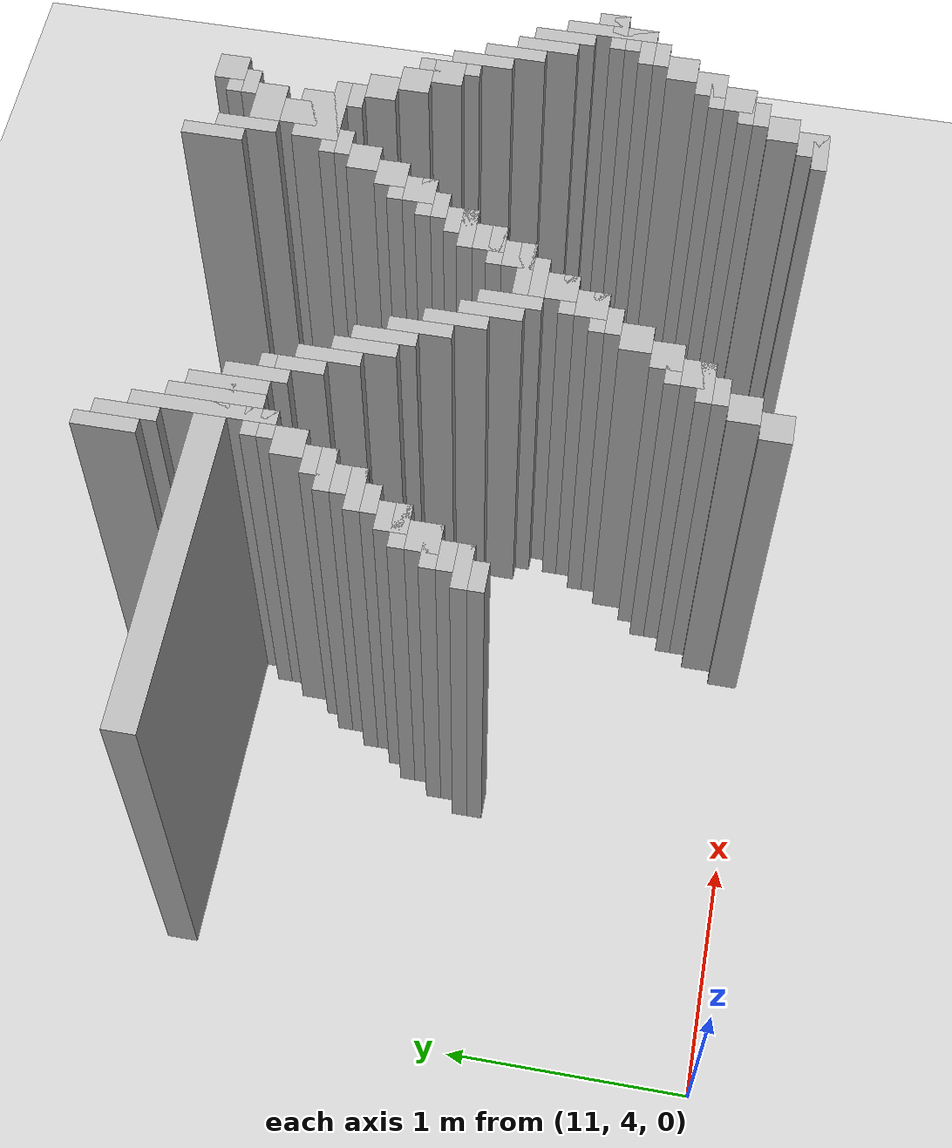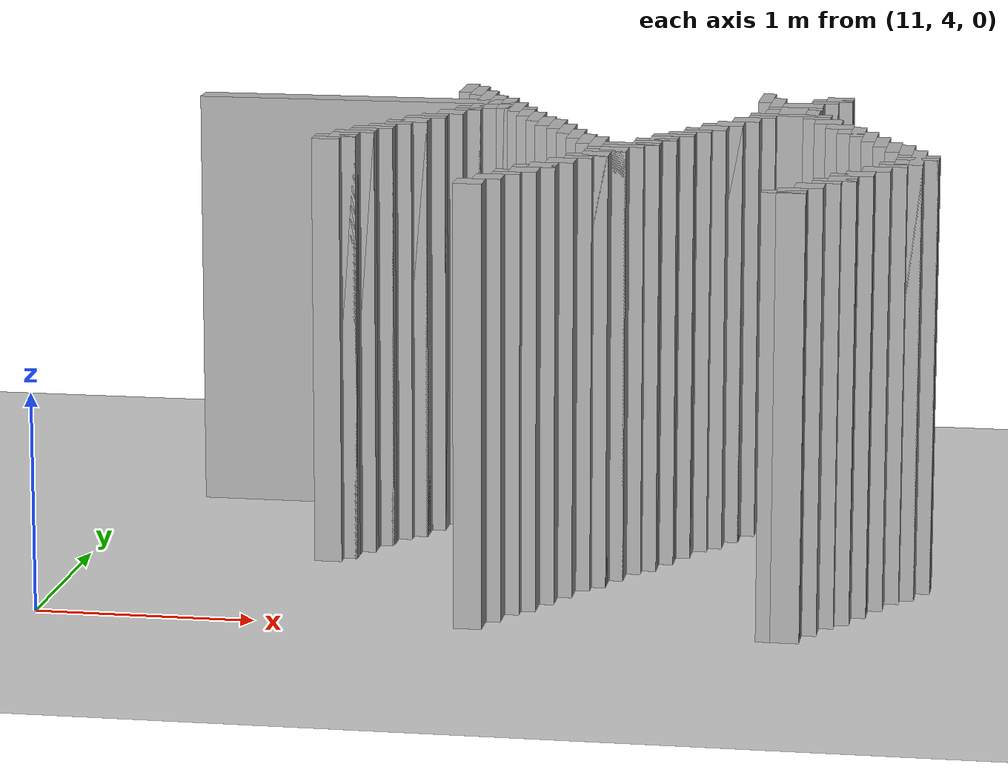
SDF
<sdf version="1.6">
 <world name="slam_world">
  <model name="ground_plane">
   <static>true</static>
   <link name="link">
    <collision name="collision">
     <geometry><plane><normal>0 0 1</normal><size>100 100</size></plane></geometry>
    </collision>
    <visual name="visual">
     <geometry><plane><normal>0 0 1</normal><size>100 100</size></plane></geometry>
     <material>
      <ambient>0.8 0.8 0.8 1</ambient>
      <diffuse>0.8 0.8 0.8 1</diffuse>
      <specular>0.8 0.8 0.8 1</specular>
     </material>
    </visual>
   </link>
  </model>
  <model name="wall_1692">
   <static>true</static>
   <pose>12.542553191489361 6.574468085106383 1.0 0 0 0</pose>
   <link name="link">
    <collision name="collision">
     <geometry><box><size>0.06382978723404255 0.2553191489361702 2.0</size></box></geometry>
    </collision>
    <visual name="visual">
     <geometry><box><size>0.06382978723404255 0.2553191489361702 2.0</size></box></geometry>
     <material><ambient>0.5 0.5 0.5 1</ambient><diffuse>0.7 0.7 0.7 1</diffuse></material>
    </visual>
   </link>
  </model>
  <model name="wall_1700">
   <static>true</static>
   <pose>12.606382978723403 6.51063829787234 1.0 0 0 0</pose>
   <link name="link">
    <collision name="collision">
     <geometry><box><size>0.06382978723404255 0.2553191489361702 2.0</size></box></geometry>
    </collision>
    <visual name="visual">
     <geometry><box><size>0.06382978723404255 0.2553191489361702 2.0</size></box></geometry>
     <material><ambient>0.5 0.5 0.5 1</ambient><diffuse>0.7 0.7 0.7 1</diffuse></material>
    </visual>
   </link>
  </model>
  <model name="wall_1701">
   <static>true</static>
   <pose>14.010638297872338 6.51063829787234 1.0 0 0 0</pose>
   <link name="link">
    <collision name="collision">
     <geometry><box><size>0.06382978723404255 0.2553191489361702 2.0</size></box></geometry>
    </collision>
    <visual name="visual">
     <geometry><box><size>0.06382978723404255 0.2553191489361702 2.0</size></box></geometry>
     <material><ambient>0.5 0.5 0.5 1</ambient><diffuse>0.7 0.7 0.7 1</diffuse></material>
    </visual>
   </link>
  </model>
  <model name="wall_1706">
   <static>true</static>
   <pose>14.361702127659573 6.51063829787234 1.0 0 0 0</pose>
   <link name="link">
    <collision name="collision">
     <geometry><box><size>0.1276595744680851 0.1276595744680851 2.0</size></box></geometry>
    </collision>
    <visual name="visual">
     <geometry><box><size>0.1276595744680851 0.1276595744680851 2.0</size></box></geometry>
     <material><ambient>0.5 0.5 0.5 1</ambient><diffuse>0.7 0.7 0.7 1</diffuse></material>
    </visual>
   </link>
  </model>
  <model name="wall_1712">
   <static>true</static>
   <pose>12.670212765957446 6.223404255319148 1.0 0 0 0</pose>
   <link name="link">
    <collision name="collision">
     <geometry><box><size>0.06382978723404255 0.5744680851063829 2.0</size></box></geometry>
    </collision>
    <visual name="visual">
     <geometry><box><size>0.06382978723404255 0.5744680851063829 2.0</size></box></geometry>
     <material><ambient>0.5 0.5 0.5 1</ambient><diffuse>0.7 0.7 0.7 1</diffuse></material>
    </visual>
   </link>
  </model>
  <model name="wall_1713">
   <static>true</static>
   <pose>14.074468085106382 6.382978723404255 1.0 0 0 0</pose>
   <link name="link">
    <collision name="collision">
     <geometry><box><size>0.06382978723404255 0.2553191489361702 2.0</size></box></geometry>
    </collision>
    <visual name="visual">
     <geometry><box><size>0.06382978723404255 0.2553191489361702 2.0</size></box></geometry>
     <material><ambient>0.5 0.5 0.5 1</ambient><diffuse>0.7 0.7 0.7 1</diffuse></material>
    </visual>
   </link>
  </model>
  <model name="wall_1714">
   <static>true</static>
   <pose>14.329787234042552 6.478723404255319 1.0 0 0 0</pose>
   <link name="link">
    <collision name="collision">
     <geometry><box><size>0.19148936170212766 0.06382978723404255 2.0</size></box></geometry>
    </collision>
    <visual name="visual">
     <geometry><box><size>0.19148936170212766 0.06382978723404255 2.0</size></box></geometry>
     <material><ambient>0.5 0.5 0.5 1</ambient><diffuse>0.7 0.7 0.7 1</diffuse></material>
    </visual>
   </link>
  </model>
  <model name="wall_1718">
   <static>true</static>
   <pose>14.297872340425531 6.414893617021276 1.0 0 0 0</pose>
   <link name="link">
    <collision name="collision">
     <geometry><box><size>0.1276595744680851 0.06382978723404255 2.0</size></box></geometry>
    </collision>
    <visual name="visual">
     <geometry><box><size>0.1276595744680851 0.06382978723404255 2.0</size></box></geometry>
     <material><ambient>0.5 0.5 0.5 1</ambient><diffuse>0.7 0.7 0.7 1</diffuse></material>
    </visual>
   </link>
  </model>
  <model name="wall_1723">
   <static>true</static>
   <pose>12.734042553191488 6.191489361702128 1.0 0 0 0</pose>
   <link name="link">
    <collision name="collision">
     <geometry><box><size>0.06382978723404255 0.3829787234042553 2.0</size></box></geometry>
    </collision>
    <visual name="visual">
     <geometry><box><size>0.06382978723404255 0.3829787234042553 2.0</size></box></geometry>
     <material><ambient>0.5 0.5 0.5 1</ambient><diffuse>0.7 0.7 0.7 1</diffuse></material>
    </visual>
   </link>
  </model>
  <model name="wall_1724">
   <static>true</static>
   <pose>14.202127659574467 6.319148936170213 1.0 0 0 0</pose>
   <link name="link">
    <collision name="collision">
     <geometry><box><size>0.19148936170212766 0.1276595744680851 2.0</size></box></geometry>
    </collision>
    <visual name="visual">
     <geometry><box><size>0.19148936170212766 0.1276595744680851 2.0</size></box></geometry>
     <material><ambient>0.5 0.5 0.5 1</ambient><diffuse>0.7 0.7 0.7 1</diffuse></material>
    </visual>
   </link>
  </model>
  <model name="wall_1726">
   <static>true</static>
   <pose>12.797872340425531 6.159574468085106 1.0 0 0 0</pose>
   <link name="link">
    <collision name="collision">
     <geometry><box><size>0.06382978723404255 0.3191489361702127 2.0</size></box></geometry>
    </collision>
    <visual name="visual">
     <geometry><box><size>0.06382978723404255 0.3191489361702127 2.0</size></box></geometry>
     <material><ambient>0.5 0.5 0.5 1</ambient><diffuse>0.7 0.7 0.7 1</diffuse></material>
    </visual>
   </link>
  </model>
  <model name="wall_1731">
   <static>true</static>
   <pose>12.063829787234042 6.191489361702128 1.0 0 0 0</pose>
   <link name="link">
    <collision name="collision">
     <geometry><box><size>1.5319148936170213 0.1276595744680851 2.0</size></box></geometry>
    </collision>
    <visual name="visual">
     <geometry><box><size>1.5319148936170213 0.1276595744680851 2.0</size></box></geometry>
     <material><ambient>0.5 0.5 0.5 1</ambient><diffuse>0.7 0.7 0.7 1</diffuse></material>
    </visual>
   </link>
  </model>
  <model name="wall_1732">
   <static>true</static>
   <pose>14.170212765957446 6.127659574468085 1.0 0 0 0</pose>
   <link name="link">
    <collision name="collision">
     <geometry><box><size>0.1276595744680851 0.2553191489361702 2.0</size></box></geometry>
    </collision>
    <visual name="visual">
     <geometry><box><size>0.1276595744680851 0.2553191489361702 2.0</size></box></geometry>
     <material><ambient>0.5 0.5 0.5 1</ambient><diffuse>0.7 0.7 0.7 1</diffuse></material>
    </visual>
   </link>
  </model>
  <model name="wall_1736">
   <static>true</static>
   <pose>12.861702127659573 6.063829787234042 1.0 0 0 0</pose>
   <link name="link">
    <collision name="collision">
     <geometry><box><size>0.06382978723404255 0.2553191489361702 2.0</size></box></geometry>
    </collision>
    <visual name="visual">
     <geometry><box><size>0.06382978723404255 0.2553191489361702 2.0</size></box></geometry>
     <material><ambient>0.5 0.5 0.5 1</ambient><diffuse>0.7 0.7 0.7 1</diffuse></material>
    </visual>
   </link>
  </model>
  <model name="wall_1737">
   <static>true</static>
   <pose>14.170212765957446 6.095744680851063 1.0 0 0 0</pose>
   <link name="link">
    <collision name="collision">
     <geometry><box><size>0.2553191489361702 0.19148936170212766 2.0</size></box></geometry>
    </collision>
    <visual name="visual">
     <geometry><box><size>0.2553191489361702 0.19148936170212766 2.0</size></box></geometry>
     <material><ambient>0.5 0.5 0.5 1</ambient><diffuse>0.7 0.7 0.7 1</diffuse></material>
    </visual>
   </link>
  </model>
  <model name="wall_1747">
   <static>true</static>
   <pose>12.76595744680851 6.031914893617021 1.0 0 0 0</pose>
   <link name="link">
    <collision name="collision">
     <geometry><box><size>0.3829787234042553 0.06382978723404255 2.0</size></box></geometry>
    </collision>
    <visual name="visual">
     <geometry><box><size>0.3829787234042553 0.06382978723404255 2.0</size></box></geometry>
     <material><ambient>0.5 0.5 0.5 1</ambient><diffuse>0.7 0.7 0.7 1</diffuse></material>
    </visual>
   </link>
  </model>
  <model name="wall_1748">
   <static>true</static>
   <pose>14.170212765957446 6.031914893617021 1.0 0 0 0</pose>
   <link name="link">
    <collision name="collision">
     <geometry><box><size>0.3829787234042553 0.06382978723404255 2.0</size></box></geometry>
    </collision>
    <visual name="visual">
     <geometry><box><size>0.3829787234042553 0.06382978723404255 2.0</size></box></geometry>
     <material><ambient>0.5 0.5 0.5 1</ambient><diffuse>0.7 0.7 0.7 1</diffuse></material>
    </visual>
   </link>
  </model>
  <model name="wall_1754">
   <static>true</static>
   <pose>12.638297872340425 5.968085106382978 1.0 0 0 0</pose>
   <link name="link">
    <collision name="collision">
     <geometry><box><size>0.1276595744680851 0.06382978723404255 2.0</size></box></geometry>
    </collision>
    <visual name="visual">
     <geometry><box><size>0.1276595744680851 0.06382978723404255 2.0</size></box></geometry>
     <material><ambient>0.5 0.5 0.5 1</ambient><diffuse>0.7 0.7 0.7 1</diffuse></material>
    </visual>
   </link>
  </model>
  <model name="wall_1755">
   <static>true</static>
   <pose>12.925531914893616 5.904255319148936 1.0 0 0 0</pose>
   <link name="link">
    <collision name="collision">
     <geometry><box><size>0.06382978723404255 0.19148936170212766 2.0</size></box></geometry>
    </collision>
    <visual name="visual">
     <geometry><box><size>0.06382978723404255 0.19148936170212766 2.0</size></box></geometry>
     <material><ambient>0.5 0.5 0.5 1</ambient><diffuse>0.7 0.7 0.7 1</diffuse></material>
    </visual>
   </link>
  </model>
  <model name="wall_1756">
   <static>true</static>
   <pose>14.042553191489361 5.968085106382978 1.0 0 0 0</pose>
   <link name="link">
    <collision name="collision">
     <geometry><box><size>0.1276595744680851 0.06382978723404255 2.0</size></box></geometry>
    </collision>
    <visual name="visual">
     <geometry><box><size>0.1276595744680851 0.06382978723404255 2.0</size></box></geometry>
     <material><ambient>0.5 0.5 0.5 1</ambient><diffuse>0.7 0.7 0.7 1</diffuse></material>
    </visual>
   </link>
  </model>
  <model name="wall_1757">
   <static>true</static>
   <pose>14.297872340425531 5.968085106382978 1.0 0 0 0</pose>
   <link name="link">
    <collision name="collision">
     <geometry><box><size>0.1276595744680851 0.06382978723404255 2.0</size></box></geometry>
    </collision>
    <visual name="visual">
     <geometry><box><size>0.1276595744680851 0.06382978723404255 2.0</size></box></geometry>
     <material><ambient>0.5 0.5 0.5 1</ambient><diffuse>0.7 0.7 0.7 1</diffuse></material>
    </visual>
   </link>
  </model>
  <model name="wall_1763">
   <static>true</static>
   <pose>12.574468085106382 5.872340425531914 1.0 0 0 0</pose>
   <link name="link">
    <collision name="collision">
     <geometry><box><size>0.1276595744680851 0.1276595744680851 2.0</size></box></geometry>
    </collision>
    <visual name="visual">
     <geometry><box><size>0.1276595744680851 0.1276595744680851 2.0</size></box></geometry>
     <material><ambient>0.5 0.5 0.5 1</ambient><diffuse>0.7 0.7 0.7 1</diffuse></material>
    </visual>
   </link>
  </model>
  <model name="wall_1764">
   <static>true</static>
   <pose>12.989361702127658 5.8085106382978715 1.0 0 0 0</pose>
   <link name="link">
    <collision name="collision">
     <geometry><box><size>0.06382978723404255 0.2553191489361702 2.0</size></box></geometry>
    </collision>
    <visual name="visual">
     <geometry><box><size>0.06382978723404255 0.2553191489361702 2.0</size></box></geometry>
     <material><ambient>0.5 0.5 0.5 1</ambient><diffuse>0.7 0.7 0.7 1</diffuse></material>
    </visual>
   </link>
  </model>
  <model name="wall_1765">
   <static>true</static>
   <pose>13.978723404255318 5.872340425531914 1.0 0 0 0</pose>
   <link name="link">
    <collision name="collision">
     <geometry><box><size>0.1276595744680851 0.1276595744680851 2.0</size></box></geometry>
    </collision>
    <visual name="visual">
     <geometry><box><size>0.1276595744680851 0.1276595744680851 2.0</size></box></geometry>
     <material><ambient>0.5 0.5 0.5 1</ambient><diffuse>0.7 0.7 0.7 1</diffuse></material>
    </visual>
   </link>
  </model>
  <model name="wall_1766">
   <static>true</static>
   <pose>14.361702127659573 5.872340425531914 1.0 0 0 0</pose>
   <link name="link">
    <collision name="collision">
     <geometry><box><size>0.1276595744680851 0.1276595744680851 2.0</size></box></geometry>
    </collision>
    <visual name="visual">
     <geometry><box><size>0.1276595744680851 0.1276595744680851 2.0</size></box></geometry>
     <material><ambient>0.5 0.5 0.5 1</ambient><diffuse>0.7 0.7 0.7 1</diffuse></material>
    </visual>
   </link>
  </model>
  <model name="wall_1772">
   <static>true</static>
   <pose>12.51063829787234 5.744680851063829 1.0 0 0 0</pose>
   <link name="link">
    <collision name="collision">
     <geometry><box><size>0.1276595744680851 0.1276595744680851 2.0</size></box></geometry>
    </collision>
    <visual name="visual">
     <geometry><box><size>0.1276595744680851 0.1276595744680851 2.0</size></box></geometry>
     <material><ambient>0.5 0.5 0.5 1</ambient><diffuse>0.7 0.7 0.7 1</diffuse></material>
    </visual>
   </link>
  </model>
  <model name="wall_1773">
   <static>true</static>
   <pose>13.053191489361701 5.680851063829786 1.0 0 0 0</pose>
   <link name="link">
    <collision name="collision">
     <geometry><box><size>0.06382978723404255 0.2553191489361702 2.0</size></box></geometry>
    </collision>
    <visual name="visual">
     <geometry><box><size>0.06382978723404255 0.2553191489361702 2.0</size></box></geometry>
     <material><ambient>0.5 0.5 0.5 1</ambient><diffuse>0.7 0.7 0.7 1</diffuse></material>
    </visual>
   </link>
  </model>
  <model name="wall_1774">
   <static>true</static>
   <pose>13.914893617021276 5.744680851063829 1.0 0 0 0</pose>
   <link name="link">
    <collision name="collision">
     <geometry><box><size>0.1276595744680851 0.1276595744680851 2.0</size></box></geometry>
    </collision>
    <visual name="visual">
     <geometry><box><size>0.1276595744680851 0.1276595744680851 2.0</size></box></geometry>
     <material><ambient>0.5 0.5 0.5 1</ambient><diffuse>0.7 0.7 0.7 1</diffuse></material>
    </visual>
   </link>
  </model>
  <model name="wall_1775">
   <static>true</static>
   <pose>14.425531914893616 5.744680851063829 1.0 0 0 0</pose>
   <link name="link">
    <collision name="collision">
     <geometry><box><size>0.1276595744680851 0.1276595744680851 2.0</size></box></geometry>
    </collision>
    <visual name="visual">
     <geometry><box><size>0.1276595744680851 0.1276595744680851 2.0</size></box></geometry>
     <material><ambient>0.5 0.5 0.5 1</ambient><diffuse>0.7 0.7 0.7 1</diffuse></material>
    </visual>
   </link>
  </model>
  <model name="wall_1781">
   <static>true</static>
   <pose>12.478723404255318 5.712765957446808 1.0 0 0 0</pose>
   <link name="link">
    <collision name="collision">
     <geometry><box><size>0.19148936170212766 0.06382978723404255 2.0</size></box></geometry>
    </collision>
    <visual name="visual">
     <geometry><box><size>0.19148936170212766 0.06382978723404255 2.0</size></box></geometry>
     <material><ambient>0.5 0.5 0.5 1</ambient><diffuse>0.7 0.7 0.7 1</diffuse></material>
    </visual>
   </link>
  </model>
  <model name="wall_1782">
   <static>true</static>
   <pose>13.117021276595743 5.617021276595744 1.0 0 0 0</pose>
   <link name="link">
    <collision name="collision">
     <geometry><box><size>0.06382978723404255 0.2553191489361702 2.0</size></box></geometry>
    </collision>
    <visual name="visual">
     <geometry><box><size>0.06382978723404255 0.2553191489361702 2.0</size></box></geometry>
     <material><ambient>0.5 0.5 0.5 1</ambient><diffuse>0.7 0.7 0.7 1</diffuse></material>
    </visual>
   </link>
  </model>
  <model name="wall_1783">
   <static>true</static>
   <pose>13.882978723404253 5.712765957446808 1.0 0 0 0</pose>
   <link name="link">
    <collision name="collision">
     <geometry><box><size>0.19148936170212766 0.06382978723404255 2.0</size></box></geometry>
    </collision>
    <visual name="visual">
     <geometry><box><size>0.19148936170212766 0.06382978723404255 2.0</size></box></geometry>
     <material><ambient>0.5 0.5 0.5 1</ambient><diffuse>0.7 0.7 0.7 1</diffuse></material>
    </visual>
   </link>
  </model>
  <model name="wall_1784">
   <static>true</static>
   <pose>14.52127659574468 5.617021276595744 1.0 0 0 0</pose>
   <link name="link">
    <collision name="collision">
     <geometry><box><size>0.06382978723404255 0.2553191489361702 2.0</size></box></geometry>
    </collision>
    <visual name="visual">
     <geometry><box><size>0.06382978723404255 0.2553191489361702 2.0</size></box></geometry>
     <material><ambient>0.5 0.5 0.5 1</ambient><diffuse>0.7 0.7 0.7 1</diffuse></material>
    </visual>
   </link>
  </model>
  <model name="wall_1788">
   <static>true</static>
   <pose>12.446808510638297 5.617021276595744 1.0 0 0 0</pose>
   <link name="link">
    <collision name="collision">
     <geometry><box><size>0.1276595744680851 0.1276595744680851 2.0</size></box></geometry>
    </collision>
    <visual name="visual">
     <geometry><box><size>0.1276595744680851 0.1276595744680851 2.0</size></box></geometry>
     <material><ambient>0.5 0.5 0.5 1</ambient><diffuse>0.7 0.7 0.7 1</diffuse></material>
    </visual>
   </link>
  </model>
  <model name="wall_1789">
   <static>true</static>
   <pose>13.851063829787233 5.617021276595744 1.0 0 0 0</pose>
   <link name="link">
    <collision name="collision">
     <geometry><box><size>0.1276595744680851 0.1276595744680851 2.0</size></box></geometry>
    </collision>
    <visual name="visual">
     <geometry><box><size>0.1276595744680851 0.1276595744680851 2.0</size></box></geometry>
     <material><ambient>0.5 0.5 0.5 1</ambient><diffuse>0.7 0.7 0.7 1</diffuse></material>
    </visual>
   </link>
  </model>
  <model name="wall_1790">
   <static>true</static>
   <pose>14.489361702127658 5.617021276595744 1.0 0 0 0</pose>
   <link name="link">
    <collision name="collision">
     <geometry><box><size>0.1276595744680851 0.1276595744680851 2.0</size></box></geometry>
    </collision>
    <visual name="visual">
     <geometry><box><size>0.1276595744680851 0.1276595744680851 2.0</size></box></geometry>
     <material><ambient>0.5 0.5 0.5 1</ambient><diffuse>0.7 0.7 0.7 1</diffuse></material>
    </visual>
   </link>
  </model>
  <model name="wall_1796">
   <static>true</static>
   <pose>12.414893617021276 5.585106382978723 1.0 0 0 0</pose>
   <link name="link">
    <collision name="collision">
     <geometry><box><size>0.19148936170212766 0.06382978723404255 2.0</size></box></geometry>
    </collision>
    <visual name="visual">
     <geometry><box><size>0.19148936170212766 0.06382978723404255 2.0</size></box></geometry>
     <material><ambient>0.5 0.5 0.5 1</ambient><diffuse>0.7 0.7 0.7 1</diffuse></material>
    </visual>
   </link>
  </model>
  <model name="wall_1797">
   <static>true</static>
   <pose>13.180851063829786 5.489361702127659 1.0 0 0 0</pose>
   <link name="link">
    <collision name="collision">
     <geometry><box><size>0.06382978723404255 0.2553191489361702 2.0</size></box></geometry>
    </collision>
    <visual name="visual">
     <geometry><box><size>0.06382978723404255 0.2553191489361702 2.0</size></box></geometry>
     <material><ambient>0.5 0.5 0.5 1</ambient><diffuse>0.7 0.7 0.7 1</diffuse></material>
    </visual>
   </link>
  </model>
  <model name="wall_1798">
   <static>true</static>
   <pose>13.819148936170212 5.585106382978723 1.0 0 0 0</pose>
   <link name="link">
    <collision name="collision">
     <geometry><box><size>0.19148936170212766 0.06382978723404255 2.0</size></box></geometry>
    </collision>
    <visual name="visual">
     <geometry><box><size>0.19148936170212766 0.06382978723404255 2.0</size></box></geometry>
     <material><ambient>0.5 0.5 0.5 1</ambient><diffuse>0.7 0.7 0.7 1</diffuse></material>
    </visual>
   </link>
  </model>
  <model name="wall_1799">
   <static>true</static>
   <pose>14.585106382978722 5.489361702127659 1.0 0 0 0</pose>
   <link name="link">
    <collision name="collision">
     <geometry><box><size>0.06382978723404255 0.2553191489361702 2.0</size></box></geometry>
    </collision>
    <visual name="visual">
     <geometry><box><size>0.06382978723404255 0.2553191489361702 2.0</size></box></geometry>
     <material><ambient>0.5 0.5 0.5 1</ambient><diffuse>0.7 0.7 0.7 1</diffuse></material>
    </visual>
   </link>
  </model>
  <model name="wall_1803">
   <static>true</static>
   <pose>12.382978723404255 5.5212765957446805 1.0 0 0 0</pose>
   <link name="link">
    <collision name="collision">
     <geometry><box><size>0.1276595744680851 0.06382978723404255 2.0</size></box></geometry>
    </collision>
    <visual name="visual">
     <geometry><box><size>0.1276595744680851 0.06382978723404255 2.0</size></box></geometry>
     <material><ambient>0.5 0.5 0.5 1</ambient><diffuse>0.7 0.7 0.7 1</diffuse></material>
    </visual>
   </link>
  </model>
  <model name="wall_1804">
   <static>true</static>
   <pose>13.787234042553191 5.5212765957446805 1.0 0 0 0</pose>
   <link name="link">
    <collision name="collision">
     <geometry><box><size>0.1276595744680851 0.06382978723404255 2.0</size></box></geometry>
    </collision>
    <visual name="visual">
     <geometry><box><size>0.1276595744680851 0.06382978723404255 2.0</size></box></geometry>
     <material><ambient>0.5 0.5 0.5 1</ambient><diffuse>0.7 0.7 0.7 1</diffuse></material>
    </visual>
   </link>
  </model>
  <model name="wall_1810">
   <static>true</static>
   <pose>12.319148936170212 5.425531914893616 1.0 0 0 0</pose>
   <link name="link">
    <collision name="collision">
     <geometry><box><size>0.1276595744680851 0.1276595744680851 2.0</size></box></geometry>
    </collision>
    <visual name="visual">
     <geometry><box><size>0.1276595744680851 0.1276595744680851 2.0</size></box></geometry>
     <material><ambient>0.5 0.5 0.5 1</ambient><diffuse>0.7 0.7 0.7 1</diffuse></material>
    </visual>
   </link>
  </model>
  <model name="wall_1811">
   <static>true</static>
   <pose>13.244680851063828 5.361702127659574 1.0 0 0 0</pose>
   <link name="link">
    <collision name="collision">
     <geometry><box><size>0.06382978723404255 0.2553191489361702 2.0</size></box></geometry>
    </collision>
    <visual name="visual">
     <geometry><box><size>0.06382978723404255 0.2553191489361702 2.0</size></box></geometry>
     <material><ambient>0.5 0.5 0.5 1</ambient><diffuse>0.7 0.7 0.7 1</diffuse></material>
    </visual>
   </link>
  </model>
  <model name="wall_1812">
   <static>true</static>
   <pose>13.723404255319148 5.425531914893616 1.0 0 0 0</pose>
   <link name="link">
    <collision name="collision">
     <geometry><box><size>0.1276595744680851 0.1276595744680851 2.0</size></box></geometry>
    </collision>
    <visual name="visual">
     <geometry><box><size>0.1276595744680851 0.1276595744680851 2.0</size></box></geometry>
     <material><ambient>0.5 0.5 0.5 1</ambient><diffuse>0.7 0.7 0.7 1</diffuse></material>
    </visual>
   </link>
  </model>
  <model name="wall_1813">
   <static>true</static>
   <pose>14.648936170212766 5.361702127659574 1.0 0 0 0</pose>
   <link name="link">
    <collision name="collision">
     <geometry><box><size>0.06382978723404255 0.2553191489361702 2.0</size></box></geometry>
    </collision>
    <visual name="visual">
     <geometry><box><size>0.06382978723404255 0.2553191489361702 2.0</size></box></geometry>
     <material><ambient>0.5 0.5 0.5 1</ambient><diffuse>0.7 0.7 0.7 1</diffuse></material>
    </visual>
   </link>
  </model>
  <model name="wall_1817">
   <static>true</static>
   <pose>12.287234042553191 5.3936170212765955 1.0 0 0 0</pose>
   <link name="link">
    <collision name="collision">
     <geometry><box><size>0.19148936170212766 0.06382978723404255 2.0</size></box></geometry>
    </collision>
    <visual name="visual">
     <geometry><box><size>0.19148936170212766 0.06382978723404255 2.0</size></box></geometry>
     <material><ambient>0.5 0.5 0.5 1</ambient><diffuse>0.7 0.7 0.7 1</diffuse></material>
    </visual>
   </link>
  </model>
  <model name="wall_1818">
   <static>true</static>
   <pose>13.691489361702127 5.3936170212765955 1.0 0 0 0</pose>
   <link name="link">
    <collision name="collision">
     <geometry><box><size>0.19148936170212766 0.06382978723404255 2.0</size></box></geometry>
    </collision>
    <visual name="visual">
     <geometry><box><size>0.19148936170212766 0.06382978723404255 2.0</size></box></geometry>
     <material><ambient>0.5 0.5 0.5 1</ambient><diffuse>0.7 0.7 0.7 1</diffuse></material>
    </visual>
   </link>
  </model>
  <model name="wall_1824">
   <static>true</static>
   <pose>12.25531914893617 5.297872340425531 1.0 0 0 0</pose>
   <link name="link">
    <collision name="collision">
     <geometry><box><size>0.1276595744680851 0.1276595744680851 2.0</size></box></geometry>
    </collision>
    <visual name="visual">
     <geometry><box><size>0.1276595744680851 0.1276595744680851 2.0</size></box></geometry>
     <material><ambient>0.5 0.5 0.5 1</ambient><diffuse>0.7 0.7 0.7 1</diffuse></material>
    </visual>
   </link>
  </model>
  <model name="wall_1825">
   <static>true</static>
   <pose>13.308510638297872 5.234042553191489 1.0 0 0 0</pose>
   <link name="link">
    <collision name="collision">
     <geometry><box><size>0.06382978723404255 0.2553191489361702 2.0</size></box></geometry>
    </collision>
    <visual name="visual">
     <geometry><box><size>0.06382978723404255 0.2553191489361702 2.0</size></box></geometry>
     <material><ambient>0.5 0.5 0.5 1</ambient><diffuse>0.7 0.7 0.7 1</diffuse></material>
    </visual>
   </link>
  </model>
  <model name="wall_1826">
   <static>true</static>
   <pose>13.659574468085106 5.297872340425531 1.0 0 0 0</pose>
   <link name="link">
    <collision name="collision">
     <geometry><box><size>0.1276595744680851 0.1276595744680851 2.0</size></box></geometry>
    </collision>
    <visual name="visual">
     <geometry><box><size>0.1276595744680851 0.1276595744680851 2.0</size></box></geometry>
     <material><ambient>0.5 0.5 0.5 1</ambient><diffuse>0.7 0.7 0.7 1</diffuse></material>
    </visual>
   </link>
  </model>
  <model name="wall_1827">
   <static>true</static>
   <pose>14.712765957446807 5.234042553191489 1.0 0 0 0</pose>
   <link name="link">
    <collision name="collision">
     <geometry><box><size>0.06382978723404255 0.2553191489361702 2.0</size></box></geometry>
    </collision>
    <visual name="visual">
     <geometry><box><size>0.06382978723404255 0.2553191489361702 2.0</size></box></geometry>
     <material><ambient>0.5 0.5 0.5 1</ambient><diffuse>0.7 0.7 0.7 1</diffuse></material>
    </visual>
   </link>
  </model>
  <model name="wall_1833">
   <static>true</static>
   <pose>12.223404255319148 5.26595744680851 1.0 0 0 0</pose>
   <link name="link">
    <collision name="collision">
     <geometry><box><size>0.19148936170212766 0.06382978723404255 2.0</size></box></geometry>
    </collision>
    <visual name="visual">
     <geometry><box><size>0.19148936170212766 0.06382978723404255 2.0</size></box></geometry>
     <material><ambient>0.5 0.5 0.5 1</ambient><diffuse>0.7 0.7 0.7 1</diffuse></material>
    </visual>
   </link>
  </model>
  <model name="wall_1834">
   <static>true</static>
   <pose>13.372340425531913 5.170212765957446 1.0 0 0 0</pose>
   <link name="link">
    <collision name="collision">
     <geometry><box><size>0.06382978723404255 0.2553191489361702 2.0</size></box></geometry>
    </collision>
    <visual name="visual">
     <geometry><box><size>0.06382978723404255 0.2553191489361702 2.0</size></box></geometry>
     <material><ambient>0.5 0.5 0.5 1</ambient><diffuse>0.7 0.7 0.7 1</diffuse></material>
    </visual>
   </link>
  </model>
  <model name="wall_1835">
   <static>true</static>
   <pose>13.627659574468083 5.26595744680851 1.0 0 0 0</pose>
   <link name="link">
    <collision name="collision">
     <geometry><box><size>0.19148936170212766 0.06382978723404255 2.0</size></box></geometry>
    </collision>
    <visual name="visual">
     <geometry><box><size>0.19148936170212766 0.06382978723404255 2.0</size></box></geometry>
     <material><ambient>0.5 0.5 0.5 1</ambient><diffuse>0.7 0.7 0.7 1</diffuse></material>
    </visual>
   </link>
  </model>
  <model name="wall_1836">
   <static>true</static>
   <pose>14.77659574468085 5.170212765957446 1.0 0 0 0</pose>
   <link name="link">
    <collision name="collision">
     <geometry><box><size>0.06382978723404255 0.2553191489361702 2.0</size></box></geometry>
    </collision>
    <visual name="visual">
     <geometry><box><size>0.06382978723404255 0.2553191489361702 2.0</size></box></geometry>
     <material><ambient>0.5 0.5 0.5 1</ambient><diffuse>0.7 0.7 0.7 1</diffuse></material>
    </visual>
   </link>
  </model>
  <model name="wall_1840">
   <static>true</static>
   <pose>12.191489361702127 5.170212765957446 1.0 0 0 0</pose>
   <link name="link">
    <collision name="collision">
     <geometry><box><size>0.1276595744680851 0.1276595744680851 2.0</size></box></geometry>
    </collision>
    <visual name="visual">
     <geometry><box><size>0.1276595744680851 0.1276595744680851 2.0</size></box></geometry>
     <material><ambient>0.5 0.5 0.5 1</ambient><diffuse>0.7 0.7 0.7 1</diffuse></material>
    </visual>
   </link>
  </model>
  <model name="wall_1841">
   <static>true</static>
   <pose>13.595744680851062 5.170212765957446 1.0 0 0 0</pose>
   <link name="link">
    <collision name="collision">
     <geometry><box><size>0.1276595744680851 0.1276595744680851 2.0</size></box></geometry>
    </collision>
    <visual name="visual">
     <geometry><box><size>0.1276595744680851 0.1276595744680851 2.0</size></box></geometry>
     <material><ambient>0.5 0.5 0.5 1</ambient><diffuse>0.7 0.7 0.7 1</diffuse></material>
    </visual>
   </link>
  </model>
  <model name="wall_1847">
   <static>true</static>
   <pose>12.159574468085106 5.138297872340425 1.0 0 0 0</pose>
   <link name="link">
    <collision name="collision">
     <geometry><box><size>0.19148936170212766 0.06382978723404255 2.0</size></box></geometry>
    </collision>
    <visual name="visual">
     <geometry><box><size>0.19148936170212766 0.06382978723404255 2.0</size></box></geometry>
     <material><ambient>0.5 0.5 0.5 1</ambient><diffuse>0.7 0.7 0.7 1</diffuse></material>
    </visual>
   </link>
  </model>
  <model name="wall_1848">
   <static>true</static>
   <pose>13.53191489361702 5.138297872340425 1.0 0 0 0</pose>
   <link name="link">
    <collision name="collision">
     <geometry><box><size>0.2553191489361702 0.06382978723404255 2.0</size></box></geometry>
    </collision>
    <visual name="visual">
     <geometry><box><size>0.2553191489361702 0.06382978723404255 2.0</size></box></geometry>
     <material><ambient>0.5 0.5 0.5 1</ambient><diffuse>0.7 0.7 0.7 1</diffuse></material>
    </visual>
   </link>
  </model>
  <model name="wall_1849">
   <static>true</static>
   <pose>14.840425531914892 4.978723404255319 1.0 0 0 0</pose>
   <link name="link">
    <collision name="collision">
     <geometry><box><size>0.06382978723404255 0.3829787234042553 2.0</size></box></geometry>
    </collision>
    <visual name="visual">
     <geometry><box><size>0.06382978723404255 0.3829787234042553 2.0</size></box></geometry>
     <material><ambient>0.5 0.5 0.5 1</ambient><diffuse>0.7 0.7 0.7 1</diffuse></material>
    </visual>
   </link>
  </model>
  <model name="wall_1854">
   <static>true</static>
   <pose>12.127659574468083 5.074468085106383 1.0 0 0 0</pose>
   <link name="link">
    <collision name="collision">
     <geometry><box><size>0.1276595744680851 0.06382978723404255 2.0</size></box></geometry>
    </collision>
    <visual name="visual">
     <geometry><box><size>0.1276595744680851 0.06382978723404255 2.0</size></box></geometry>
     <material><ambient>0.5 0.5 0.5 1</ambient><diffuse>0.7 0.7 0.7 1</diffuse></material>
    </visual>
   </link>
  </model>
  <model name="wall_1855">
   <static>true</static>
   <pose>13.499999999999998 5.074468085106383 1.0 0 0 0</pose>
   <link name="link">
    <collision name="collision">
     <geometry><box><size>0.19148936170212766 0.06382978723404255 2.0</size></box></geometry>
    </collision>
    <visual name="visual">
     <geometry><box><size>0.19148936170212766 0.06382978723404255 2.0</size></box></geometry>
     <material><ambient>0.5 0.5 0.5 1</ambient><diffuse>0.7 0.7 0.7 1</diffuse></material>
    </visual>
   </link>
  </model>
  <model name="wall_1860">
   <static>true</static>
   <pose>13.468085106382977 4.978723404255319 1.0 0 0 0</pose>
   <link name="link">
    <collision name="collision">
     <geometry><box><size>0.1276595744680851 0.1276595744680851 2.0</size></box></geometry>
    </collision>
    <visual name="visual">
     <geometry><box><size>0.1276595744680851 0.1276595744680851 2.0</size></box></geometry>
     <material><ambient>0.5 0.5 0.5 1</ambient><diffuse>0.7 0.7 0.7 1</diffuse></material>
    </visual>
   </link>
  </model>
  <model name="wall_1861">
   <static>true</static>
   <pose>14.904255319148936 4.978723404255319 1.0 0 0 0</pose>
   <link name="link">
    <collision name="collision">
     <geometry><box><size>0.06382978723404255 0.1276595744680851 2.0</size></box></geometry>
    </collision>
    <visual name="visual">
     <geometry><box><size>0.06382978723404255 0.1276595744680851 2.0</size></box></geometry>
     <material><ambient>0.5 0.5 0.5 1</ambient><diffuse>0.7 0.7 0.7 1</diffuse></material>
    </visual>
   </link>
  </model>
  <model name="wall_1865">
   <static>true</static>
   <pose>13.436170212765957 4.946808510638298 1.0 0 0 0</pose>
   <link name="link">
    <collision name="collision">
     <geometry><box><size>0.19148936170212766 0.06382978723404255 2.0</size></box></geometry>
    </collision>
    <visual name="visual">
     <geometry><box><size>0.19148936170212766 0.06382978723404255 2.0</size></box></geometry>
     <material><ambient>0.5 0.5 0.5 1</ambient><diffuse>0.7 0.7 0.7 1</diffuse></material>
    </visual>
   </link>
  </model>
  <model name="wall_1866">
   <static>true</static>
   <pose>14.840425531914892 4.946808510638298 1.0 0 0 0</pose>
   <link name="link">
    <collision name="collision">
     <geometry><box><size>0.19148936170212766 0.06382978723404255 2.0</size></box></geometry>
    </collision>
    <visual name="visual">
     <geometry><box><size>0.19148936170212766 0.06382978723404255 2.0</size></box></geometry>
     <material><ambient>0.5 0.5 0.5 1</ambient><diffuse>0.7 0.7 0.7 1</diffuse></material>
    </visual>
   </link>
  </model>
  <model name="wall_1870">
   <static>true</static>
   <pose>13.404255319148936 4.8510638297872335 1.0 0 0 0</pose>
   <link name="link">
    <collision name="collision">
     <geometry><box><size>0.1276595744680851 0.1276595744680851 2.0</size></box></geometry>
    </collision>
    <visual name="visual">
     <geometry><box><size>0.1276595744680851 0.1276595744680851 2.0</size></box></geometry>
     <material><ambient>0.5 0.5 0.5 1</ambient><diffuse>0.7 0.7 0.7 1</diffuse></material>
    </visual>
   </link>
  </model>
  <model name="wall_1871">
   <static>true</static>
   <pose>14.808510638297872 4.8510638297872335 1.0 0 0 0</pose>
   <link name="link">
    <collision name="collision">
     <geometry><box><size>0.1276595744680851 0.1276595744680851 2.0</size></box></geometry>
    </collision>
    <visual name="visual">
     <geometry><box><size>0.1276595744680851 0.1276595744680851 2.0</size></box></geometry>
     <material><ambient>0.5 0.5 0.5 1</ambient><diffuse>0.7 0.7 0.7 1</diffuse></material>
    </visual>
   </link>
  </model>
  <model name="wall_1875">
   <static>true</static>
   <pose>13.372340425531913 4.819148936170213 1.0 0 0 0</pose>
   <link name="link">
    <collision name="collision">
     <geometry><box><size>0.19148936170212766 0.06382978723404255 2.0</size></box></geometry>
    </collision>
    <visual name="visual">
     <geometry><box><size>0.19148936170212766 0.06382978723404255 2.0</size></box></geometry>
     <material><ambient>0.5 0.5 0.5 1</ambient><diffuse>0.7 0.7 0.7 1</diffuse></material>
    </visual>
   </link>
  </model>
  <model name="wall_1876">
   <static>true</static>
   <pose>14.77659574468085 4.819148936170213 1.0 0 0 0</pose>
   <link name="link">
    <collision name="collision">
     <geometry><box><size>0.19148936170212766 0.06382978723404255 2.0</size></box></geometry>
    </collision>
    <visual name="visual">
     <geometry><box><size>0.19148936170212766 0.06382978723404255 2.0</size></box></geometry>
     <material><ambient>0.5 0.5 0.5 1</ambient><diffuse>0.7 0.7 0.7 1</diffuse></material>
    </visual>
   </link>
  </model>
  <model name="wall_1881">
   <static>true</static>
   <pose>13.340425531914892 4.75531914893617 1.0 0 0 0</pose>
   <link name="link">
    <collision name="collision">
     <geometry><box><size>0.1276595744680851 0.06382978723404255 2.0</size></box></geometry>
    </collision>
    <visual name="visual">
     <geometry><box><size>0.1276595744680851 0.06382978723404255 2.0</size></box></geometry>
     <material><ambient>0.5 0.5 0.5 1</ambient><diffuse>0.7 0.7 0.7 1</diffuse></material>
    </visual>
   </link>
  </model>
  <model name="wall_1882">
   <static>true</static>
   <pose>14.744680851063828 4.75531914893617 1.0 0 0 0</pose>
   <link name="link">
    <collision name="collision">
     <geometry><box><size>0.1276595744680851 0.06382978723404255 2.0</size></box></geometry>
    </collision>
    <visual name="visual">
     <geometry><box><size>0.1276595744680851 0.06382978723404255 2.0</size></box></geometry>
     <material><ambient>0.5 0.5 0.5 1</ambient><diffuse>0.7 0.7 0.7 1</diffuse></material>
    </visual>
   </link>
  </model>
  <model name="wall_1887">
   <static>true</static>
   <pose>13.27659574468085 4.659574468085106 1.0 0 0 0</pose>
   <link name="link">
    <collision name="collision">
     <geometry><box><size>0.1276595744680851 0.1276595744680851 2.0</size></box></geometry>
    </collision>
    <visual name="visual">
     <geometry><box><size>0.1276595744680851 0.1276595744680851 2.0</size></box></geometry>
     <material><ambient>0.5 0.5 0.5 1</ambient><diffuse>0.7 0.7 0.7 1</diffuse></material>
    </visual>
   </link>
  </model>
  <model name="wall_1888">
   <static>true</static>
   <pose>14.680851063829786 4.659574468085106 1.0 0 0 0</pose>
   <link name="link">
    <collision name="collision">
     <geometry><box><size>0.1276595744680851 0.1276595744680851 2.0</size></box></geometry>
    </collision>
    <visual name="visual">
     <geometry><box><size>0.1276595744680851 0.1276595744680851 2.0</size></box></geometry>
     <material><ambient>0.5 0.5 0.5 1</ambient><diffuse>0.7 0.7 0.7 1</diffuse></material>
    </visual>
   </link>
  </model>
  <model name="wall_1893">
   <static>true</static>
   <pose>13.212765957446807 4.531914893617021 1.0 0 0 0</pose>
   <link name="link">
    <collision name="collision">
     <geometry><box><size>0.1276595744680851 0.1276595744680851 2.0</size></box></geometry>
    </collision>
    <visual name="visual">
     <geometry><box><size>0.1276595744680851 0.1276595744680851 2.0</size></box></geometry>
     <material><ambient>0.5 0.5 0.5 1</ambient><diffuse>0.7 0.7 0.7 1</diffuse></material>
    </visual>
   </link>
  </model>
  <model name="wall_1894">
   <static>true</static>
   <pose>14.617021276595743 4.531914893617021 1.0 0 0 0</pose>
   <link name="link">
    <collision name="collision">
     <geometry><box><size>0.1276595744680851 0.1276595744680851 2.0</size></box></geometry>
    </collision>
    <visual name="visual">
     <geometry><box><size>0.1276595744680851 0.1276595744680851 2.0</size></box></geometry>
     <material><ambient>0.5 0.5 0.5 1</ambient><diffuse>0.7 0.7 0.7 1</diffuse></material>
    </visual>
   </link>
  </model>
  <model name="wall_1899">
   <static>true</static>
   <pose>13.180851063829786 4.5 1.0 0 0 0</pose>
   <link name="link">
    <collision name="collision">
     <geometry><box><size>0.19148936170212766 0.06382978723404255 2.0</size></box></geometry>
    </collision>
    <visual name="visual">
     <geometry><box><size>0.19148936170212766 0.06382978723404255 2.0</size></box></geometry>
     <material><ambient>0.5 0.5 0.5 1</ambient><diffuse>0.7 0.7 0.7 1</diffuse></material>
    </visual>
   </link>
  </model>
  <model name="wall_1900">
   <static>true</static>
   <pose>14.585106382978722 4.5 1.0 0 0 0</pose>
   <link name="link">
    <collision name="collision">
     <geometry><box><size>0.19148936170212766 0.06382978723404255 2.0</size></box></geometry>
    </collision>
    <visual name="visual">
     <geometry><box><size>0.19148936170212766 0.06382978723404255 2.0</size></box></geometry>
     <material><ambient>0.5 0.5 0.5 1</ambient><diffuse>0.7 0.7 0.7 1</diffuse></material>
    </visual>
   </link>
  </model>
  <model name="wall_1905">
   <static>true</static>
   <pose>13.148936170212766 4.404255319148936 1.0 0 0 0</pose>
   <link name="link">
    <collision name="collision">
     <geometry><box><size>0.1276595744680851 0.1276595744680851 2.0</size></box></geometry>
    </collision>
    <visual name="visual">
     <geometry><box><size>0.1276595744680851 0.1276595744680851 2.0</size></box></geometry>
     <material><ambient>0.5 0.5 0.5 1</ambient><diffuse>0.7 0.7 0.7 1</diffuse></material>
    </visual>
   </link>
  </model>
  <model name="wall_1906">
   <static>true</static>
   <pose>14.553191489361701 4.404255319148936 1.0 0 0 0</pose>
   <link name="link">
    <collision name="collision">
     <geometry><box><size>0.1276595744680851 0.1276595744680851 2.0</size></box></geometry>
    </collision>
    <visual name="visual">
     <geometry><box><size>0.1276595744680851 0.1276595744680851 2.0</size></box></geometry>
     <material><ambient>0.5 0.5 0.5 1</ambient><diffuse>0.7 0.7 0.7 1</diffuse></material>
    </visual>
   </link>
  </model>
  <model name="wall_1911">
   <static>true</static>
   <pose>13.117021276595743 4.372340425531915 1.0 0 0 0</pose>
   <link name="link">
    <collision name="collision">
     <geometry><box><size>0.19148936170212766 0.06382978723404255 2.0</size></box></geometry>
    </collision>
    <visual name="visual">
     <geometry><box><size>0.19148936170212766 0.06382978723404255 2.0</size></box></geometry>
     <material><ambient>0.5 0.5 0.5 1</ambient><diffuse>0.7 0.7 0.7 1</diffuse></material>
    </visual>
   </link>
  </model>
  <model name="wall_1912">
   <static>true</static>
   <pose>14.52127659574468 4.372340425531915 1.0 0 0 0</pose>
   <link name="link">
    <collision name="collision">
     <geometry><box><size>0.19148936170212766 0.06382978723404255 2.0</size></box></geometry>
    </collision>
    <visual name="visual">
     <geometry><box><size>0.19148936170212766 0.06382978723404255 2.0</size></box></geometry>
     <material><ambient>0.5 0.5 0.5 1</ambient><diffuse>0.7 0.7 0.7 1</diffuse></material>
    </visual>
   </link>
  </model>
  <model name="wall_1916">
   <static>true</static>
   <pose>13.085106382978722 4.308510638297872 1.0 0 0 0</pose>
   <link name="link">
    <collision name="collision">
     <geometry><box><size>0.1276595744680851 0.06382978723404255 2.0</size></box></geometry>
    </collision>
    <visual name="visual">
     <geometry><box><size>0.1276595744680851 0.06382978723404255 2.0</size></box></geometry>
     <material><ambient>0.5 0.5 0.5 1</ambient><diffuse>0.7 0.7 0.7 1</diffuse></material>
    </visual>
   </link>
  </model>
  <model name="wall_1917">
   <static>true</static>
   <pose>14.489361702127658 4.308510638297872 1.0 0 0 0</pose>
   <link name="link">
    <collision name="collision">
     <geometry><box><size>0.1276595744680851 0.06382978723404255 2.0</size></box></geometry>
    </collision>
    <visual name="visual">
     <geometry><box><size>0.1276595744680851 0.06382978723404255 2.0</size></box></geometry>
     <material><ambient>0.5 0.5 0.5 1</ambient><diffuse>0.7 0.7 0.7 1</diffuse></material>
    </visual>
   </link>
  </model>
  <model name="wall_1922">
   <static>true</static>
   <pose>13.02127659574468 4.212765957446808 1.0 0 0 0</pose>
   <link name="link">
    <collision name="collision">
     <geometry><box><size>0.1276595744680851 0.1276595744680851 2.0</size></box></geometry>
    </collision>
    <visual name="visual">
     <geometry><box><size>0.1276595744680851 0.1276595744680851 2.0</size></box></geometry>
     <material><ambient>0.5 0.5 0.5 1</ambient><diffuse>0.7 0.7 0.7 1</diffuse></material>
    </visual>
   </link>
  </model>
  <model name="wall_1923">
   <static>true</static>
   <pose>14.425531914893616 4.212765957446808 1.0 0 0 0</pose>
   <link name="link">
    <collision name="collision">
     <geometry><box><size>0.1276595744680851 0.1276595744680851 2.0</size></box></geometry>
    </collision>
    <visual name="visual">
     <geometry><box><size>0.1276595744680851 0.1276595744680851 2.0</size></box></geometry>
     <material><ambient>0.5 0.5 0.5 1</ambient><diffuse>0.7 0.7 0.7 1</diffuse></material>
    </visual>
   </link>
  </model>
  <model name="wall_1928">
   <static>true</static>
   <pose>12.957446808510637 4.085106382978723 1.0 0 0 0</pose>
   <link name="link">
    <collision name="collision">
     <geometry><box><size>0.1276595744680851 0.1276595744680851 2.0</size></box></geometry>
    </collision>
    <visual name="visual">
     <geometry><box><size>0.1276595744680851 0.1276595744680851 2.0</size></box></geometry>
     <material><ambient>0.5 0.5 0.5 1</ambient><diffuse>0.7 0.7 0.7 1</diffuse></material>
    </visual>
   </link>
  </model>
  <model name="wall_1929">
   <static>true</static>
   <pose>14.361702127659573 4.085106382978723 1.0 0 0 0</pose>
   <link name="link">
    <collision name="collision">
     <geometry><box><size>0.1276595744680851 0.1276595744680851 2.0</size></box></geometry>
    </collision>
    <visual name="visual">
     <geometry><box><size>0.1276595744680851 0.1276595744680851 2.0</size></box></geometry>
     <material><ambient>0.5 0.5 0.5 1</ambient><diffuse>0.7 0.7 0.7 1</diffuse></material>
    </visual>
   </link>
  </model>
  <model name="wall_1935">
   <static>true</static>
   <pose>14.329787234042552 4.053191489361701 1.0 0 0 0</pose>
   <link name="link">
    <collision name="collision">
     <geometry><box><size>0.19148936170212766 0.06382978723404255 2.0</size></box></geometry>
    </collision>
    <visual name="visual">
     <geometry><box><size>0.19148936170212766 0.06382978723404255 2.0</size></box></geometry>
     <material><ambient>0.5 0.5 0.5 1</ambient><diffuse>0.7 0.7 0.7 1</diffuse></material>
    </visual>
   </link>
  </model>
 </world>
</sdf>
